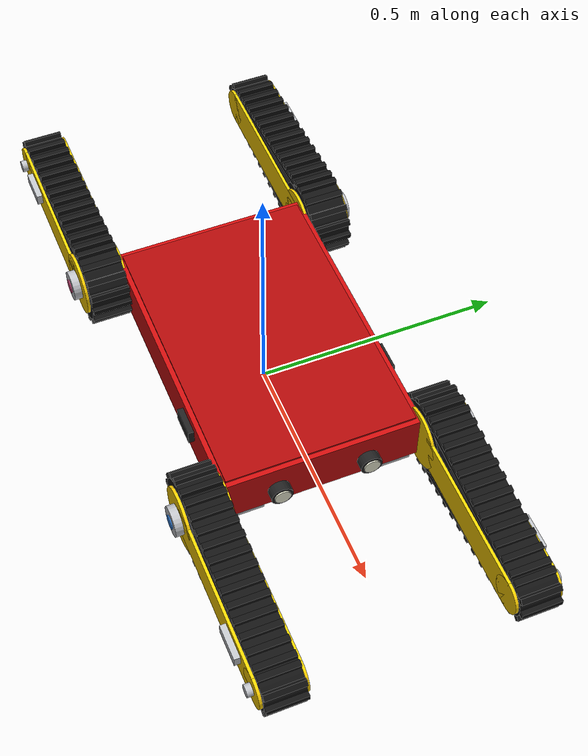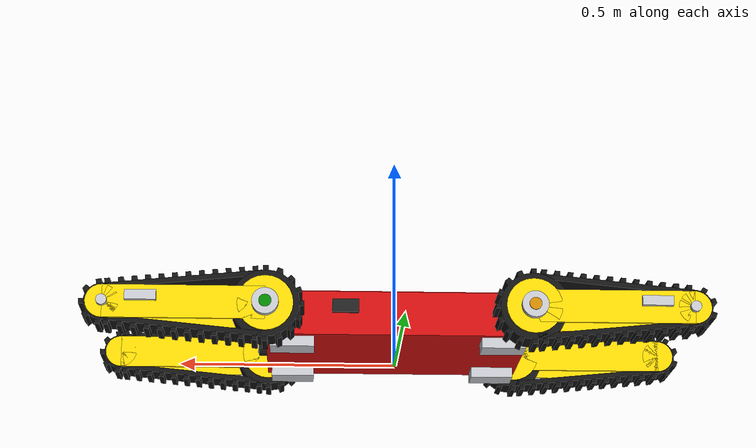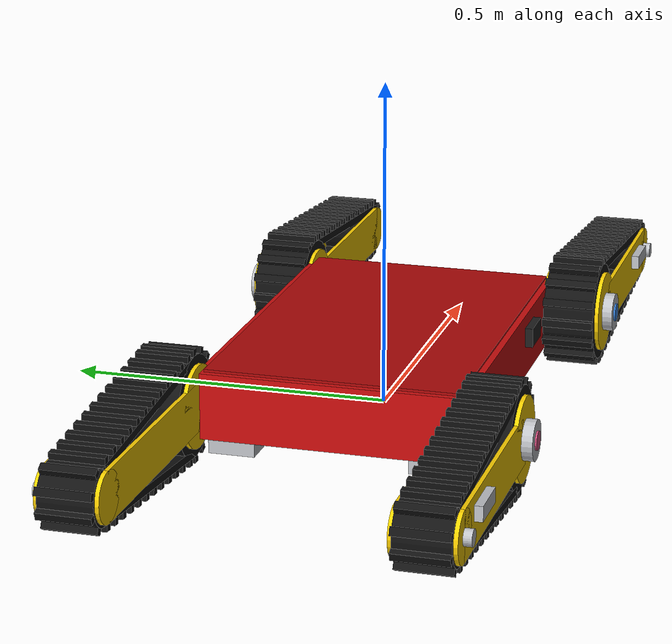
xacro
<?xml version="1.0"?>
<robot name="starcrawler" xmlns:xacro="http://www.ros.org/wiki/xacro">

  <!-- ─── Dimensiones ─────────────────────────────────────────────────── -->
  <xacro:property name="base_length"  value="0.60"/>   <!-- X, frente-cola -->
  <xacro:property name="base_width"   value="0.40"/>   <!-- Y, lado-lado   -->
  <xacro:property name="base_height"  value="0.10"/>
  <xacro:property name="base_mass"    value="20.0"/>   <!-- kg, aprox      -->

  <!-- Poleas de la oruga: activa del CAD (0.15279/2, = wheel_radius) y
       pasiva de diametro 83 -->
  <xacro:property name="pulley_radius" value="0.0764"/>
  <xacro:property name="tip_radius"    value="0.0415"/>
  <xacro:property name="arm_length"   value="0.36"/>   <!-- entre ejes de poleas -->
  <xacro:property name="arm_width"    value="0.08"/>
  <xacro:property name="arm_mass"     value="3.0"/>
  <xacro:property name="belt_thickness" value="0.012"/>
  <!-- Aspecto (solo visual): tacos de la banda y chapas laterales -->
  <xacro:property name="lug_count"  value="12"/>
  <xacro:property name="lug_length" value="0.012"/>
  <xacro:property name="lug_height" value="0.010"/>
  <xacro:property name="plate_t"    value="0.006"/>
  <xacro:property name="plate_r1"   value="${pulley_radius*0.82}"/>
  <xacro:property name="plate_r2"   value="${tip_radius*0.9}"/>

  <!-- Tramos de banda: tangentes a las dos poleas, inclinados belt_angle -->
  <xacro:property name="belt_angle"  value="${asin((pulley_radius - tip_radius) / arm_length)}"/>
  <xacro:property name="belt_length" value="${arm_length * cos(belt_angle)}"/>
  <xacro:property name="belt_x"
      value="${arm_length/2 + (pulley_radius + tip_radius - belt_thickness)/2 * sin(belt_angle)}"/>
  <xacro:property name="belt_z"
      value="${(pulley_radius + tip_radius - belt_thickness)/2 * cos(belt_angle)}"/>

  <!-- Altura del pivote sobre el suelo con las orugas en llano: la banda
       apoya bajo la polea activa -->
  <xacro:property name="pivot_height" value="${pulley_radius}"/>

  <!-- Limite de recorrido: encoder 90..270 deg -> +-90 deg de elevacion -->
  <xacro:property name="arm_limit"    value="${pi/2}"/>
  <!-- 400 pasos/rev * reductora 1:80 = 32000 pasos/rev; a ~417 pasos/s
       (semiperiodo 1200 us) salen ~4.7 deg/s = 0.082 rad/s -->
  <xacro:property name="arm_max_vel"  value="0.082"/>
  <xacro:property name="arm_effort"   value="60.0"/>

  <!-- ─── Materiales ──────────────────────────────────────────────────── -->
  <!-- Los de Horu (fotos): caja roja, chapas amarillas y banda de goma
       negra. Cada brazo conserva su color en el tapacubos. -->
  <material name="sc_chasis"><color rgba="0.80 0.05 0.05 1.0"/></material>
  <material name="sc_tapa">  <color rgba="0.68 0.03 0.03 1.0"/></material>
  <material name="sc_chapa"> <color rgba="1.00 0.82 0.00 1.0"/></material>
  <material name="sc_goma">  <color rgba="0.07 0.07 0.07 1.0"/></material>
  <material name="sc_metal"> <color rgba="0.75 0.76 0.78 1.0"/></material>
  <material name="sc_negro"> <color rgba="0.12 0.12 0.12 1.0"/></material>
  <material name="sc_luz">   <color rgba="0.95 0.95 0.85 1.0"/></material>
  <material name="sc_fr">    <color rgba="0.22 0.53 0.90 1.0"/></material>
  <material name="sc_fl">    <color rgba="0.00 0.51 0.00 1.0"/></material>
  <material name="sc_rr">    <color rgba="0.84 0.32 0.51 1.0"/></material>
  <material name="sc_rl">    <color rgba="0.79 0.52 0.00 1.0"/></material>
  <material name="sc_sensor"><color rgba="0.90 0.90 0.90 1.0"/></material>

  <!-- Inercia de un prisma rectangular -->
  <xacro:macro name="box_inertia" params="m x y z">
    <inertial>
      <mass value="${m}"/>
      <inertia
        ixx="${m*(y*y+z*z)/12.0}" ixy="0.0" ixz="0.0"
        iyy="${m*(x*x+z*z)/12.0}" iyz="0.0"
        izz="${m*(x*x+y*y)/12.0}"/>
    </inertial>
  </xacro:macro>

  <!-- ─── Chasis ──────────────────────────────────────────────────────── -->
  <!-- base_footprint: proyeccion en el suelo, raiz para Nav2 -->
  <link name="base_footprint"/>

  <joint name="chassis_lift_joint" type="prismatic">
    <parent link="base_footprint"/>
    <child link="chassis_lift_link"/>
    <origin xyz="0 0 ${pivot_height}"/>
    <axis xyz="0 0 1"/>
    <limit lower="-0.6" upper="2.0" effort="0" velocity="1"/>
  </joint>
  <link name="chassis_lift_link"/>

  <joint name="chassis_pitch_joint" type="revolute">
    <parent link="chassis_lift_link"/>
    <child link="chassis_pitch_link"/>
    <axis xyz="0 1 0"/>
    <limit lower="${-pi/2}" upper="${pi/2}" effort="0" velocity="1"/>
  </joint>
  <link name="chassis_pitch_link"/>

  <joint name="chassis_roll_joint" type="revolute">
    <parent link="chassis_pitch_link"/>
    <child link="base_link"/>
    <axis xyz="1 0 0"/>
    <limit lower="${-pi/2}" upper="${pi/2}" effort="0" velocity="1"/>
  </joint>

  <link name="base_link">
    <visual>
      <geometry><box size="${base_length} ${base_width} ${base_height}"/></geometry>
      <material name="sc_chasis"/>
    </visual>
    <collision>
      <geometry><box size="${base_length} ${base_width} ${base_height}"/></geometry>
    </collision>
    <xacro:box_inertia m="${base_mass}" x="${base_length}" y="${base_width}" z="${base_height}"/>
  </link>

  <xacro:macro name="crawler" params="name x_sign y_sign material">
    <joint name="${name}_joint" type="revolute">
      <parent link="base_link"/>
      <child  link="${name}_link"/>
      <origin xyz="${x_sign*base_length/2} ${y_sign*(base_width/2 + arm_width/2)} 0"/>
      <axis xyz="0 ${-x_sign} 0"/>
      <limit lower="${-arm_limit}" upper="${arm_limit}"
             effort="${arm_effort}" velocity="${arm_max_vel}"/>
      <dynamics damping="0.5" friction="0.5"/>
    </joint>

    <link name="${name}_link">
      <visual>
        <origin rpy="${pi/2} 0 0"/>
        <geometry><cylinder radius="${pulley_radius}" length="${arm_width}"/></geometry>
        <material name="sc_goma"/>
      </visual>
      <visual>
        <origin xyz="${x_sign*arm_length} 0 0" rpy="${pi/2} 0 0"/>
        <geometry><cylinder radius="${tip_radius}" length="${arm_width}"/></geometry>
        <material name="sc_goma"/>
      </visual>
      <!-- tramo de arriba y tramo de abajo de la banda -->
      <visual>
        <origin xyz="${x_sign*belt_x} 0 ${belt_z}" rpy="0 ${x_sign*belt_angle} 0"/>
        <geometry><box size="${belt_length} ${arm_width} ${belt_thickness}"/></geometry>
        <material name="sc_goma"/>
      </visual>
      <visual>
        <origin xyz="${x_sign*belt_x} 0 ${-belt_z}" rpy="0 ${-x_sign*belt_angle} 0"/>
        <geometry><box size="${belt_length} ${arm_width} ${belt_thickness}"/></geometry>
        <material name="sc_goma"/>
      </visual>
      <collision>
        <origin xyz="${x_sign*arm_length/2} 0 0"/>
        <geometry><box size="${arm_length} ${arm_width} ${2*pulley_radius}"/></geometry>
      </collision>
      <inertial>
        <origin xyz="${x_sign*arm_length/2} 0 0"/>
        <mass value="${arm_mass}"/>
        <inertia
          ixx="${arm_mass*(arm_width*arm_width+4*pulley_radius*pulley_radius)/12.0}" ixy="0.0" ixz="0.0"
          iyy="${arm_mass*(arm_length*arm_length+4*pulley_radius*pulley_radius)/12.0}" iyz="0.0"
          izz="${arm_mass*(arm_length*arm_length+arm_width*arm_width)/12.0}"/>
      </inertial>
    </link>
  </xacro:macro>

  <xacro:property name="lug_pitch" value="${belt_length/lug_count}"/>

  <!-- n tacos a lo largo de un tramo, en el marco del tramo -->
  <xacro:macro name="tacos_tramo" params="n side">
    <xacro:if value="${n > 0}">
      <visual>
        <origin xyz="${(n - 0.5)*lug_pitch - belt_length/2} 0 ${side*(belt_thickness/2 + lug_height/2)}"/>
        <geometry><box size="${lug_length} ${arm_width} ${lug_height}"/></geometry>
        <material name="sc_goma"/>
      </visual>
      <xacro:tacos_tramo n="${n-1}" side="${side}"/>
    </xacro:if>
  </xacro:macro>

  <!-- Tacos del arco de una polea (los de la mitad por donde abraza la
       banda). extremo = -1 polea activa, +1 polea de la punta -->
  <xacro:macro name="tacos_arco" params="k n r x_sign extremo">
    <xacro:if value="${n - k > 0}">
      <xacro:property name="th" value="${2*pi*k/n}"/>
      <xacro:if value="${extremo*(x_sign*cos(th) - sin(belt_angle)) >= 0}">
        <visual>
          <origin xyz="${(r + lug_height/2)*cos(th)} 0 ${(r + lug_height/2)*sin(th)}"
                  rpy="0 ${pi/2 - th} 0"/>
          <geometry><box size="${lug_length} ${arm_width} ${lug_height}"/></geometry>
          <material name="sc_goma"/>
        </visual>
      </xacro:if>
      <xacro:tacos_arco k="${k+1}" n="${n}" r="${r}" x_sign="${x_sign}" extremo="${extremo}"/>
    </xacro:if>
  </xacro:macro>

  <xacro:macro name="banda_movil" params="name x_sign">
    <xacro:macro name="tramo" params="lado side">
      <joint name="${name}_tacos_${lado}_joint" type="prismatic">
        <parent link="${name}_link"/>
        <child link="${name}_tacos_${lado}"/>
        <origin xyz="${x_sign*belt_x} 0 ${side*belt_z}" rpy="0 ${side*x_sign*belt_angle} 0"/>
        <axis xyz="${side} 0 0"/>
        <limit lower="0" upper="${lug_pitch}" effort="0" velocity="1"/>
      </joint>
      <link name="${name}_tacos_${lado}">
        <xacro:tacos_tramo n="${lug_count}" side="${side}"/>
      </link>
    </xacro:macro>
    <xacro:tramo lado="arriba" side="1"/>
    <xacro:tramo lado="abajo" side="-1"/>
    <xacro:macro name="arco" params="lado x r extremo">
      <xacro:property name="n" value="${int(2*pi*r/lug_pitch + 0.5)}"/>
      <joint name="${name}_tacos_${lado}_joint" type="revolute">
        <parent link="${name}_link"/>
        <child link="${name}_tacos_${lado}"/>
        <origin xyz="${x} 0 0"/>
        <axis xyz="0 1 0"/>
        <limit lower="0" upper="${2*pi/n}" effort="0" velocity="10"/>
      </joint>
      <link name="${name}_tacos_${lado}">
        <xacro:tacos_arco k="0" n="${n}" r="${r}" x_sign="${x_sign}" extremo="${extremo}"/>
      </link>
    </xacro:macro>
    <xacro:arco lado="polea" x="0" r="${pulley_radius}" extremo="-1"/>
    <xacro:arco lado="punta" x="${x_sign*arm_length}" r="${tip_radius}" extremo="1"/>
  </xacro:macro>

  <xacro:macro name="chapa" params="x_sign lado">
    <visual>
      <origin xyz="${x_sign*arm_length/2} ${lado*(arm_width/2 + plate_t/2)} 0"/>
      <geometry><box size="${arm_length} ${plate_t} ${2*plate_r2}"/></geometry>
      <material name="sc_chapa"/>
    </visual>
    <visual>
      <origin xyz="0 ${lado*(arm_width/2 + plate_t/2)} 0" rpy="${pi/2} 0 0"/>
      <geometry><cylinder radius="${plate_r1}" length="${plate_t}"/></geometry>
      <material name="sc_chapa"/>
    </visual>
    <visual>
      <origin xyz="${x_sign*arm_length} ${lado*(arm_width/2 + plate_t/2)} 0" rpy="${pi/2} 0 0"/>
      <geometry><cylinder radius="${plate_r2}" length="${plate_t}"/></geometry>
      <material name="sc_chapa"/>
    </visual>
  </xacro:macro>

  <!-- Chapas amarillas, tensor y tapacubos de cada oruga, en un link
       fijo: chasis_node y el contacto solo leen los cilindros del brazo -->
  <xacro:macro name="crawler_deco" params="name x_sign y_sign material">
    <joint name="${name}_deco_joint" type="fixed">
      <parent link="${name}_link"/>
      <child link="${name}_deco"/>
    </joint>
    <xacro:banda_movil name="${name}" x_sign="${x_sign}"/>
    <link name="${name}_deco">
      <xacro:chapa x_sign="${x_sign}" lado="1"/>
      <xacro:chapa x_sign="${x_sign}" lado="-1"/>
      <visual>
        <origin xyz="${x_sign*arm_length} ${y_sign*(arm_width/2 + plate_t + 0.006)} 0" rpy="${pi/2} 0 0"/>
        <geometry><cylinder radius="0.012" length="0.012"/></geometry>
        <material name="sc_metal"/>
      </visual>
      <visual>
        <origin xyz="${x_sign*(arm_length - 0.085)} ${y_sign*(arm_width/2 + plate_t + 0.006)} 0.012"/>
        <geometry><box size="0.07 0.012 0.022"/></geometry>
        <material name="sc_metal"/>
      </visual>
      <visual>
        <origin xyz="0 ${y_sign*(arm_width/2 + plate_t + 0.008)} 0" rpy="${pi/2} 0 0"/>
        <geometry><cylinder radius="0.03" length="0.016"/></geometry>
        <material name="sc_metal"/>
      </visual>
      <visual>
        <origin xyz="0 ${y_sign*(arm_width/2 + plate_t + 0.017)} 0" rpy="${pi/2} 0 0"/>
        <geometry><cylinder radius="0.014" length="0.003"/></geometry>
        <material name="${material}"/>
      </visual>
    </link>
  </xacro:macro>

  <xacro:crawler name="crawler_fr" x_sign="1"  y_sign="-1" material="sc_fr"/>
  <xacro:crawler name="crawler_fl" x_sign="1"  y_sign="1"  material="sc_fl"/>
  <xacro:crawler name="crawler_rr" x_sign="-1" y_sign="-1" material="sc_rr"/>
  <xacro:crawler name="crawler_rl" x_sign="-1" y_sign="1"  material="sc_rl"/>
  <xacro:crawler_deco name="crawler_fr" x_sign="1"  y_sign="-1" material="sc_fr"/>
  <xacro:crawler_deco name="crawler_fl" x_sign="1"  y_sign="1"  material="sc_fl"/>
  <xacro:crawler_deco name="crawler_rr" x_sign="-1" y_sign="-1" material="sc_rr"/>
  <xacro:crawler_deco name="crawler_rl" x_sign="-1" y_sign="1"  material="sc_rl"/>

  <!-- Detalles de la caja: tapa, faros, asas y soportes de los brazos -->
  <xacro:macro name="faro" params="y">
    <visual>
      <origin xyz="${base_length/2 + 0.01} ${y} -0.01" rpy="0 ${pi/2} 0"/>
      <geometry><cylinder radius="0.022" length="0.02"/></geometry>
      <material name="sc_negro"/>
    </visual>
    <visual>
      <origin xyz="${base_length/2 + 0.021} ${y} -0.01" rpy="0 ${pi/2} 0"/>
      <geometry><cylinder radius="0.016" length="0.003"/></geometry>
      <material name="sc_luz"/>
    </visual>
  </xacro:macro>
  <xacro:macro name="soporte" params="xs ys">
    <visual>
      <origin xyz="${xs*(base_length/2 - 0.06)} ${ys*(base_width/2 - 0.05)} ${-base_height/2 - 0.012}"/>
      <geometry><box size="0.10 0.07 0.024"/></geometry>
      <material name="sc_metal"/>
    </visual>
  </xacro:macro>
  <joint name="chasis_deco_joint" type="fixed">
    <parent link="base_link"/>
    <child link="chasis_deco"/>
  </joint>
  <link name="chasis_deco">
    <visual>
      <origin xyz="0 0 ${base_height/2 + 0.002}"/>
      <geometry><box size="${base_length - 0.02} ${base_width - 0.02} 0.004"/></geometry>
      <material name="sc_tapa"/>
    </visual>
    <xacro:faro y="0.09"/>
    <xacro:faro y="-0.09"/>
    <visual>
      <origin xyz="0.12 ${base_width/2 + 0.006} 0.015"/>
      <geometry><box size="0.06 0.012 0.03"/></geometry>
      <material name="sc_negro"/>
    </visual>
    <visual>
      <origin xyz="0.12 ${-base_width/2 - 0.006} 0.015"/>
      <geometry><box size="0.06 0.012 0.03"/></geometry>
      <material name="sc_negro"/>
    </visual>
    <xacro:soporte xs="1"  ys="1"/>
    <xacro:soporte xs="1"  ys="-1"/>
    <xacro:soporte xs="-1" ys="1"/>
    <xacro:soporte xs="-1" ys="-1"/>
  </link>

  <joint name="imu_joint" type="fixed">
    <parent link="base_link"/>
    <child  link="imu_link"/>
    <origin xyz="${base_length/2 - 0.05} 0 ${base_height/2}"/>
  </joint>
  <link name="imu_link">
    <visual>
      <geometry><box size="0.02 0.02 0.005"/></geometry>
      <material name="sc_sensor"/>
    </visual>
  </link>

</robot>
